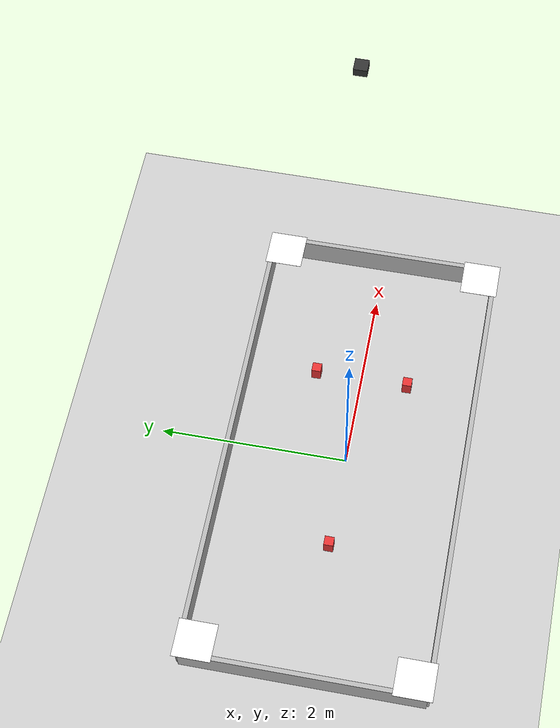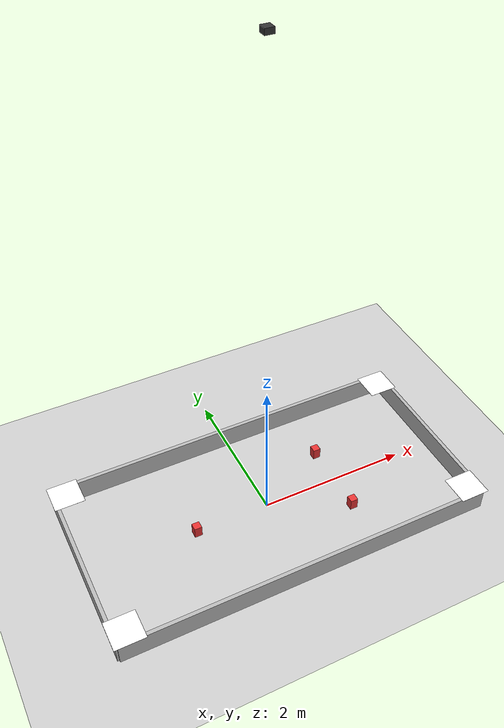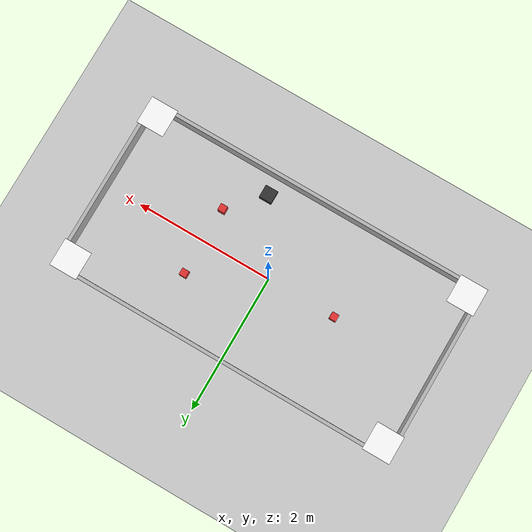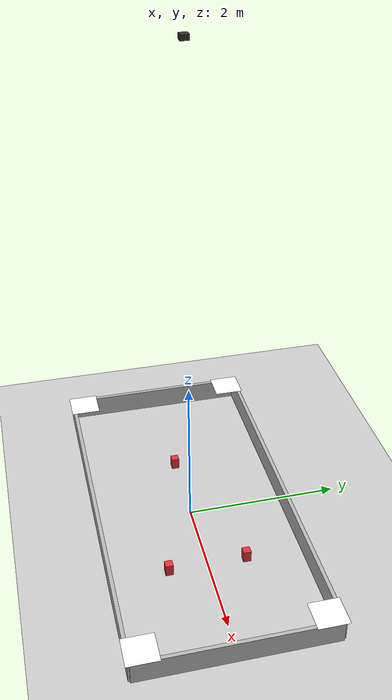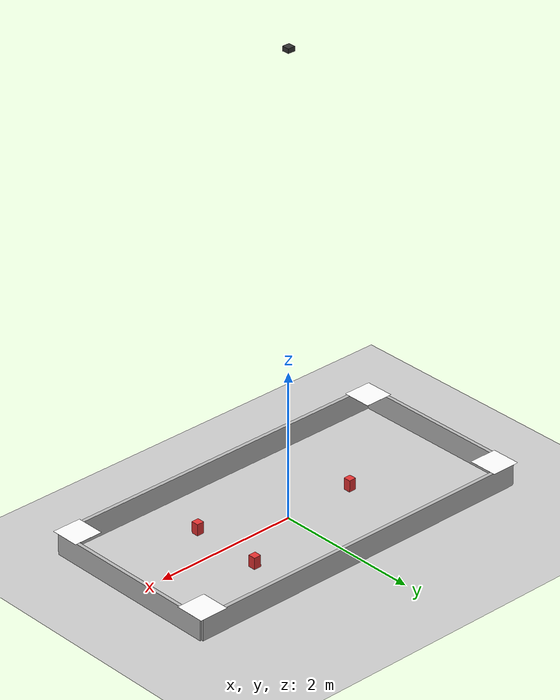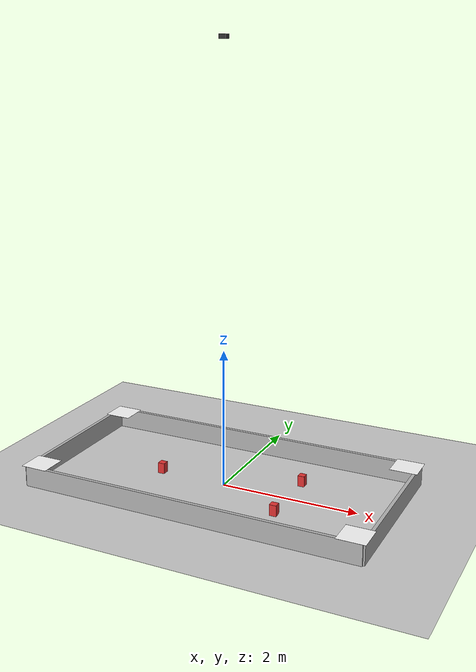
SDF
<sdf version="1.10">
 <world name="robot_world">
  <physics name="5ms" type="ignored">
   <max_step_size>0.0050000000000000001</max_step_size>
   <real_time_factor>1</real_time_factor>
   <real_time_update_rate>200</real_time_update_rate>
  </physics>
  <plugin name="gz::sim::systems::Physics" filename="gz-sim-physics-system"/>
  <plugin name="gz::sim::systems::UserCommands" filename="gz-sim-user-commands-system"/>
  <plugin name="gz::sim::systems::SceneBroadcaster" filename="gz-sim-scene-broadcaster-system"/>
  <plugin name="gz::sim::systems::Sensors" filename="gz-sim-sensors-system">
   <render_engine>ogre2</render_engine>
  </plugin>
  <plugin name="gz::sim::systems::Imu" filename="gz-sim-imu-system"/>
  <plugin name="gz::sim::systems::Contact" filename="gz-sim-contact-system"/>
  <gravity>0 0 -9.8000000000000007</gravity>
  <magnetic_field>5.5644999999999998e-06 2.2875799999999999e-05 -4.2388400000000002e-05</magnetic_field>
  <atmosphere type="adiabatic"/>
  <scene>
   <ambient>0.400000006 0.400000006 0.400000006 1</ambient>
   <background>0.699999988 0.699999988 0.699999988 1</background>
   <shadows>true</shadows>
  </scene>
  <model name="ground_plane">
   <static>true</static>
   <link name="link">
    <collision name="collision">
     <geometry><plane><normal>0 0 1</normal><size>100 100</size></plane></geometry>
     <surface><contact><collide_bitmask>0x0005</collide_bitmask></contact></surface>
    </collision>
    <visual name="visual">
     <geometry><plane><normal>0 0 1</normal><size>100 100</size></plane></geometry>
     <material>
      <ambient>0.800000012 0.800000012 0.800000012 1</ambient>
      <diffuse>0.800000012 0.800000012 0.800000012 1</diffuse>
      <specular>0.800000012 0.800000012 0.800000012 1</specular>
     </material>
    </visual>
    <inertial>
     <mass>1</mass>
     <inertia><ixx>1</ixx><ixy>0</ixy><ixz>0</ixz><iyy>1</iyy><iyz>0</iyz><izz>1</izz></inertia>
    </inertial>
   </link>
  </model>
  <model name="lidar_obstacle_box1">
   <static>true</static>
   <pose>1 0.5 0.050000000000000003 0 0 0</pose>
   <link name="link">
    <collision name="collision">
     <geometry><box><size>0.10000000000000001 0.10000000000000001 0.20000000000000001</size></box></geometry>
     <surface><contact><collide_bitmask>0x0005</collide_bitmask></contact></surface>
    </collision>
    <visual name="visual">
     <geometry><box><size>0.10000000000000001 0.10000000000000001 0.20000000000000001</size></box></geometry>
     <material>
      <ambient>0.899999976 0.200000003 0.200000003 1</ambient>
      <diffuse>0.899999976 0.200000003 0.200000003 1</diffuse>
     </material>
    </visual>
    <inertial>
     <mass>1</mass>
     <inertia><ixx>1</ixx><ixy>0</ixy><ixz>0</ixz><iyy>1</iyy><iyz>0</iyz><izz>1</izz></inertia>
    </inertial>
   </link>
  </model>
  <model name="lidar_obstacle_box3">
   <static>true</static>
   <pose>1 -0.5 0.050000000000000003 0 0 0</pose>
   <link name="link">
    <collision name="collision">
     <geometry><box><size>0.10000000000000001 0.10000000000000001 0.20000000000000001</size></box></geometry>
     <surface><contact><collide_bitmask>0x0005</collide_bitmask></contact></surface>
    </collision>
    <visual name="visual">
     <geometry><box><size>0.10000000000000001 0.10000000000000001 0.20000000000000001</size></box></geometry>
     <material>
      <ambient>0.899999976 0.200000003 0.200000003 1</ambient>
      <diffuse>0.899999976 0.200000003 0.200000003 1</diffuse>
     </material>
    </visual>
    <inertial>
     <mass>1</mass>
     <inertia><ixx>1</ixx><ixy>0</ixy><ixz>0</ixz><iyy>1</iyy><iyz>0</iyz><izz>1</izz></inertia>
    </inertial>
   </link>
  </model>
  <model name="lidar_obstacle_box2">
   <static>true</static>
   <pose>-1 0 0.050000000000000003 0 0 0</pose>
   <link name="link">
    <collision name="collision">
     <geometry><box><size>0.10000000000000001 0.10000000000000001 0.20000000000000001</size></box></geometry>
     <surface><contact><collide_bitmask>0x0005</collide_bitmask></contact></surface>
    </collision>
    <visual name="visual">
     <geometry><box><size>0.10000000000000001 0.10000000000000001 0.20000000000000001</size></box></geometry>
     <material>
      <ambient>0.899999976 0.200000003 0.200000003 1</ambient>
      <diffuse>0.899999976 0.200000003 0.200000003 1</diffuse>
     </material>
    </visual>
    <inertial>
     <mass>1</mass>
     <inertia><ixx>1</ixx><ixy>0</ixy><ixz>0</ixz><iyy>1</iyy><iyz>0</iyz><izz>1</izz></inertia>
    </inertial>
   </link>
  </model>
  <model name="arena_wall_north">
   <static>true</static>
   <pose>0 1.25 0.14999999999999999 0 0 0</pose>
   <link name="link">
    <collision name="collision">
     <geometry><box><size>5 0.050000000000000003 0.29999999999999999</size></box></geometry>
     <surface><contact><collide_bitmask>0x0005</collide_bitmask></contact></surface>
    </collision>
    <visual name="visual">
     <geometry><box><size>5 0.050000000000000003 0.29999999999999999</size></box></geometry>
    </visual>
    <inertial>
     <mass>1</mass>
     <inertia><ixx>1</ixx><ixy>0</ixy><ixz>0</ixz><iyy>1</iyy><iyz>0</iyz><izz>1</izz></inertia>
    </inertial>
   </link>
  </model>
  <model name="arena_wall_south">
   <static>true</static>
   <pose>0 -1.25 0.14999999999999999 0 0 0</pose>
   <link name="link">
    <collision name="collision">
     <geometry><box><size>5 0.050000000000000003 0.29999999999999999</size></box></geometry>
     <surface><contact><collide_bitmask>0x0005</collide_bitmask></contact></surface>
    </collision>
    <visual name="visual">
     <geometry><box><size>5 0.050000000000000003 0.29999999999999999</size></box></geometry>
    </visual>
    <inertial>
     <mass>1</mass>
     <inertia><ixx>1</ixx><ixy>0</ixy><ixz>0</ixz><iyy>1</iyy><iyz>0</iyz><izz>1</izz></inertia>
    </inertial>
   </link>
  </model>
  <model name="arena_wall_east">
   <static>true</static>
   <pose>2.5 0 0.14999999999999999 0 0 0</pose>
   <link name="link">
    <collision name="collision">
     <geometry><box><size>0.050000000000000003 2.5 0.29999999999999999</size></box></geometry>
     <surface><contact><collide_bitmask>0x0005</collide_bitmask></contact></surface>
    </collision>
    <visual name="visual">
     <geometry><box><size>0.050000000000000003 2.5 0.29999999999999999</size></box></geometry>
    </visual>
    <inertial>
     <mass>1</mass>
     <inertia><ixx>1</ixx><ixy>0</ixy><ixz>0</ixz><iyy>1</iyy><iyz>0</iyz><izz>1</izz></inertia>
    </inertial>
   </link>
  </model>
  <model name="arena_wall_west">
   <static>true</static>
   <pose>-2.5 0 0.14999999999999999 0 0 0</pose>
   <link name="link">
    <collision name="collision">
     <geometry><box><size>0.050000000000000003 2.5 0.29999999999999999</size></box></geometry>
     <surface><contact><collide_bitmask>0x0005</collide_bitmask></contact></surface>
    </collision>
    <visual name="visual">
     <geometry><box><size>0.050000000000000003 2.5 0.29999999999999999</size></box></geometry>
    </visual>
    <inertial>
     <mass>1</mass>
     <inertia><ixx>1</ixx><ixy>0</ixy><ixz>0</ixz><iyy>1</iyy><iyz>0</iyz><izz>1</izz></inertia>
    </inertial>
   </link>
  </model>
  <model name="field_apriltag_10">
   <static>true</static>
   <pose>-2.3500000000000001 -1.1000000000000001 0.30599999999999999 0 0 0</pose>
   <link name="link">
    <visual name="tag_visual">
     <cast_shadows>false</cast_shadows>
     <geometry><plane><normal>0 0 1</normal><size>0.40000000000000002 0.40000000000000002</size></plane></geometry>
     <material>
      <ambient>1 1 1 1</ambient>
      <diffuse>1 1 1 1</diffuse>
      <specular>0 0 0 1</specular>
      <pbr>
       <metal>
        <albedo_map>model://apriltag_textures/materials/textures/tag36_11_00010.png</albedo_map>
        <roughness>1.0</roughness>
       </metal>
      </pbr>
     </material>
    </visual>
    <inertial>
     <mass>1</mass>
     <inertia><ixx>1</ixx><ixy>0</ixy><ixz>0</ixz><iyy>1</iyy><iyz>0</iyz><izz>1</izz></inertia>
    </inertial>
   </link>
  </model>
  <model name="field_apriltag_11">
   <static>true</static>
   <pose>2.3500000000000001 -1.1000000000000001 0.30599999999999999 0 0 0</pose>
   <link name="link">
    <visual name="tag_visual">
     <cast_shadows>false</cast_shadows>
     <geometry><plane><normal>0 0 1</normal><size>0.40000000000000002 0.40000000000000002</size></plane></geometry>
     <material>
      <ambient>1 1 1 1</ambient>
      <diffuse>1 1 1 1</diffuse>
      <specular>0 0 0 1</specular>
      <pbr>
       <metal>
        <albedo_map>model://apriltag_textures/materials/textures/tag36_11_00011.png</albedo_map>
        <roughness>1.0</roughness>
       </metal>
      </pbr>
     </material>
    </visual>
    <inertial>
     <mass>1</mass>
     <inertia><ixx>1</ixx><ixy>0</ixy><ixz>0</ixz><iyy>1</iyy><iyz>0</iyz><izz>1</izz></inertia>
    </inertial>
   </link>
  </model>
  <model name="field_apriltag_12">
   <static>true</static>
   <pose>2.3500000000000001 1.1000000000000001 0.30599999999999999 0 0 0</pose>
   <link name="link">
    <visual name="tag_visual">
     <cast_shadows>false</cast_shadows>
     <geometry><plane><normal>0 0 1</normal><size>0.40000000000000002 0.40000000000000002</size></plane></geometry>
     <material>
      <ambient>1 1 1 1</ambient>
      <diffuse>1 1 1 1</diffuse>
      <specular>0 0 0 1</specular>
      <pbr>
       <metal>
        <albedo_map>model://apriltag_textures/materials/textures/tag36_11_00012.png</albedo_map>
        <roughness>1.0</roughness>
       </metal>
      </pbr>
     </material>
    </visual>
    <inertial>
     <mass>1</mass>
     <inertia><ixx>1</ixx><ixy>0</ixy><ixz>0</ixz><iyy>1</iyy><iyz>0</iyz><izz>1</izz></inertia>
    </inertial>
   </link>
  </model>
  <model name="field_apriltag_13">
   <static>true</static>
   <pose>-2.3500000000000001 1.1000000000000001 0.30599999999999999 0 0 0</pose>
   <link name="link">
    <visual name="tag_visual">
     <cast_shadows>false</cast_shadows>
     <geometry><plane><normal>0 0 1</normal><size>0.40000000000000002 0.40000000000000002</size></plane></geometry>
     <material>
      <ambient>1 1 1 1</ambient>
      <diffuse>1 1 1 1</diffuse>
      <specular>0 0 0 1</specular>
      <pbr>
       <metal>
        <albedo_map>model://apriltag_textures/materials/textures/tag36_11_00013.png</albedo_map>
        <roughness>1.0</roughness>
       </metal>
      </pbr>
     </material>
    </visual>
    <inertial>
     <mass>1</mass>
     <inertia><ixx>1</ixx><ixy>0</ixy><ixz>0</ixz><iyy>1</iyy><iyz>0</iyz><izz>1</izz></inertia>
    </inertial>
   </link>
  </model>
  <model name="overhead_camera">
   <static>true</static>
   <link name="overhead_camera_link">
    <pose>0 0 6.2000000000000002 0 0 0</pose>
    <visual name="camera_body_visual">
     <geometry><box><size>0.10000000000000001 0.10000000000000001 0.059999999999999998</size></box></geometry>
     <material>
      <ambient>0.150000006 0.150000006 0.150000006 1</ambient>
      <diffuse>0.200000003 0.200000003 0.200000003 1</diffuse>
      <specular>0.0500000007 0.0500000007 0.0500000007 1</specular>
     </material>
    </visual>
    <sensor name="overhead_camera_sensor" type="camera">
     <pose>0 0 0 0 1.5707963267948966 0</pose>
     <topic>/overhead_camera</topic>
     <update_rate>30</update_rate>
     <enable_metrics>false</enable_metrics>
     <camera name="__default__">
      <horizontal_fov>0.49975952366191151</horizontal_fov>
      <image>
       <width>720</width>
       <height>1280</height>
       <format>RGB_INT8</format>
       <anti_aliasing>4</anti_aliasing>
      </image>
      <camera_info_topic>__default__</camera_info_topic>
      <triggered>false</triggered>
      <clip><near>0.050000000000000003</near><far>20</far></clip>
      <save enabled="false"><path>__default__</path></save>
      <visibility_mask>4294967295</visibility_mask>
      <noise><type>none</type><mean>0</mean><stddev>0</stddev></noise>
      <distortion><k1>0</k1><k2>0</k2><k3>0</k3><p1>0</p1><p2>0</p2><center>0.5 0.5</center></distortion>
      <lens>
       <type>stereographic</type>
       <scale_to_hfov>true</scale_to_hfov>
       <cutoff_angle>1.5707963267948966</cutoff_angle>
       <env_texture_size>256</env_texture_size>
      </lens>
     </camera>
    </sensor>
    <inertial>
     <mass>1</mass>
     <inertia><ixx>1</ixx><ixy>0</ixy><ixz>0</ixz><iyy>1</iyy><iyz>0</iyz><izz>1</izz></inertia>
    </inertial>
   </link>
  </model>
  <light name="sun" type="directional">
   <pose>0 0 10 0 0 0</pose>
   <intensity>1</intensity>
   <direction>-0.5 0.10000000000000001 -0.90000000000000002</direction>
   <diffuse>0.800000012 0.800000012 0.800000012 1</diffuse>
   <specular>0.200000003 0.200000003 0.200000003 1</specular>
   <attenuation>
    <range>1000</range>
    <linear>0.01</linear>
    <constant>0.90000000000000002</constant>
    <quadratic>0.001</quadratic>
   </attenuation>
   <spot><inner_angle>0</inner_angle><outer_angle>0</outer_angle><falloff>0</falloff></spot>
  </light>
 </world>
</sdf>
